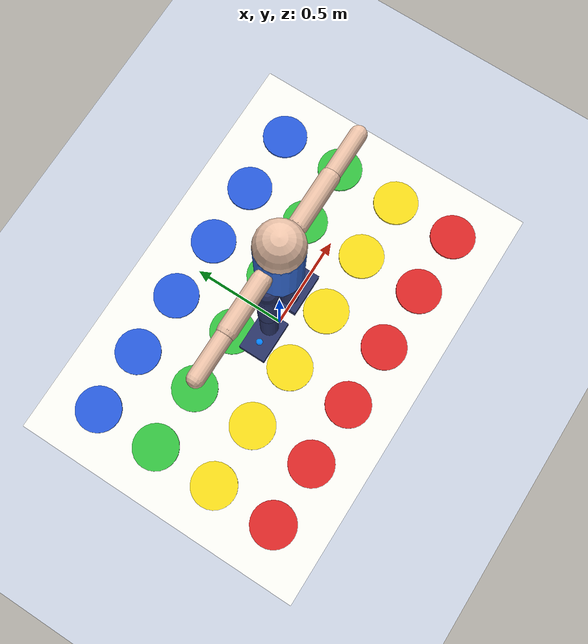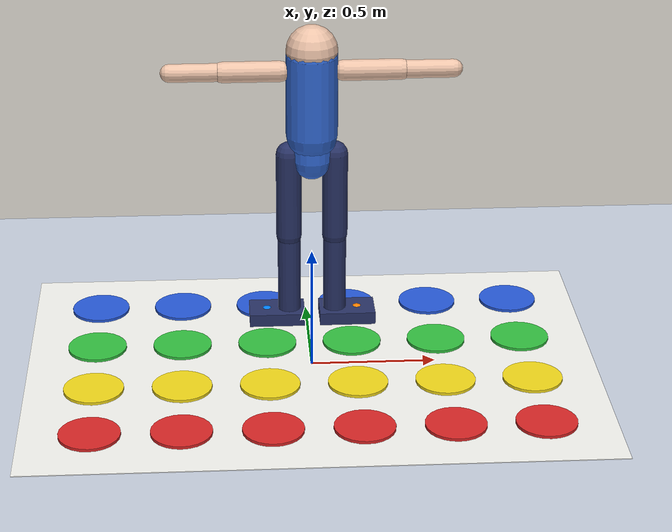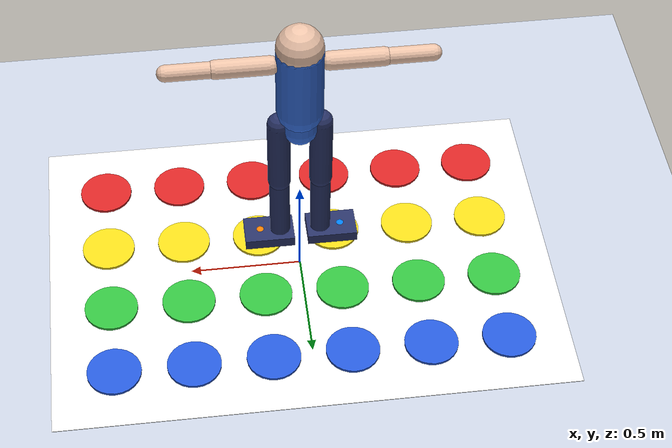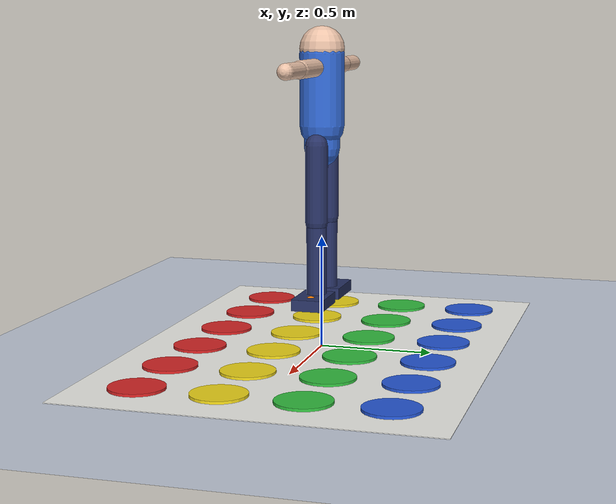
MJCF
<mujoco model="twister_humanoid">
  <compiler angle="degree" coordinate="local" inertiafromgeom="false"/>
  <option gravity="0 0 -9.81" timestep="0.01" integrator="RK4"/>

  <visual>
    <global offwidth="1280" offheight="960" elevation="-20" azimuth="135"/>
    <quality shadowsize="4096" offsamples="8"/>
    <headlight ambient="0.35 0.35 0.4" diffuse="0.5 0.5 0.5" specular="0.2 0.2 0.2"/>
    <map shadowclip="2.5" znear="0.02" zfar="40"/>
    <rgba haze="0.85 0.89 0.95 1"/>
  </visual>

  <default>
    <joint limited="true" damping="4" armature="0.04"/>
    <geom friction="1.2 0.05 0.005" condim="3" margin="0.002" solref="0.02 1" solimp="0.9 0.95 0.001"/>
    <position kp="90" kv="12" forcerange="-250 250"/>
  </default>

  <asset>
    <texture name="skybox" type="skybox" builtin="gradient" rgb1="0.32 0.45 0.62" rgb2="0.08 0.10 0.18" width="512" height="512"/>
    <texture name="grid" type="2d" builtin="checker" width="512" height="512" rgb1="0.86 0.88 0.92" rgb2="0.70 0.74 0.82" mark="edge" markrgb="0.55 0.58 0.66"/>
    <material name="grid" texture="grid" texrepeat="12 12" reflectance="0.18" shininess="0.3" specular="0.4"/>
    <material name="skin" rgba="0.92 0.76 0.66 1" specular="0.3" shininess="0.4" reflectance="0.05"/>
    <material name="shirt" rgba="0.20 0.42 0.85 1" specular="0.5" shininess="0.5" reflectance="0.12"/>
    <material name="pants" rgba="0.16 0.20 0.40 1" specular="0.4" shininess="0.4" reflectance="0.1"/>
  </asset>

  <worldbody>
    <light name="key" pos="2.5 -1.5 4.5" dir="-0.45 0.3 -1" directional="false" diffuse="0.7 0.7 0.68" specular="0.3 0.3 0.3" castshadow="true"/>
    <light name="fill" pos="-2.5 2.0 3.0" dir="0.5 -0.4 -1" directional="false" diffuse="0.3 0.32 0.4" castshadow="false"/>
    <geom name="floor" type="plane" size="6 6 0.1" material="grid"/>

    <!-- Twister mat (visual only, no collision) -->
    <geom name="twister_mat" type="box" size="1.15 0.8 0.012" pos="0 0 -0.012" rgba="0.96 0.96 0.94 1" contype="0" conaffinity="0"/>
    <geom name="mat_r0_c0" type="cylinder" size="0.12 0.006" pos="-0.875 -0.525 0.006" rgba="0.85 0.15 0.15 1" contype="0" conaffinity="0"/>
    <geom name="mat_r0_c1" type="cylinder" size="0.12 0.006" pos="-0.525 -0.525 0.006" rgba="0.85 0.15 0.15 1" contype="0" conaffinity="0"/>
    <geom name="mat_r0_c2" type="cylinder" size="0.12 0.006" pos="-0.175 -0.525 0.006" rgba="0.85 0.15 0.15 1" contype="0" conaffinity="0"/>
    <geom name="mat_r0_c3" type="cylinder" size="0.12 0.006" pos="0.175 -0.525 0.006" rgba="0.85 0.15 0.15 1" contype="0" conaffinity="0"/>
    <geom name="mat_r0_c4" type="cylinder" size="0.12 0.006" pos="0.525 -0.525 0.006" rgba="0.85 0.15 0.15 1" contype="0" conaffinity="0"/>
    <geom name="mat_r0_c5" type="cylinder" size="0.12 0.006" pos="0.875 -0.525 0.006" rgba="0.85 0.15 0.15 1" contype="0" conaffinity="0"/>
    <geom name="mat_r1_c0" type="cylinder" size="0.12 0.006" pos="-0.875 -0.175 0.006" rgba="0.95 0.85 0.1 1" contype="0" conaffinity="0"/>
    <geom name="mat_r1_c1" type="cylinder" size="0.12 0.006" pos="-0.525 -0.175 0.006" rgba="0.95 0.85 0.1 1" contype="0" conaffinity="0"/>
    <geom name="mat_r1_c2" type="cylinder" size="0.12 0.006" pos="-0.175 -0.175 0.006" rgba="0.95 0.85 0.1 1" contype="0" conaffinity="0"/>
    <geom name="mat_r1_c3" type="cylinder" size="0.12 0.006" pos="0.175 -0.175 0.006" rgba="0.95 0.85 0.1 1" contype="0" conaffinity="0"/>
    <geom name="mat_r1_c4" type="cylinder" size="0.12 0.006" pos="0.525 -0.175 0.006" rgba="0.95 0.85 0.1 1" contype="0" conaffinity="0"/>
    <geom name="mat_r1_c5" type="cylinder" size="0.12 0.006" pos="0.875 -0.175 0.006" rgba="0.95 0.85 0.1 1" contype="0" conaffinity="0"/>
    <geom name="mat_r2_c0" type="cylinder" size="0.12 0.006" pos="-0.875 0.175 0.006" rgba="0.2 0.75 0.25 1" contype="0" conaffinity="0"/>
    <geom name="mat_r2_c1" type="cylinder" size="0.12 0.006" pos="-0.525 0.175 0.006" rgba="0.2 0.75 0.25 1" contype="0" conaffinity="0"/>
    <geom name="mat_r2_c2" type="cylinder" size="0.12 0.006" pos="-0.175 0.175 0.006" rgba="0.2 0.75 0.25 1" contype="0" conaffinity="0"/>
    <geom name="mat_r2_c3" type="cylinder" size="0.12 0.006" pos="0.175 0.175 0.006" rgba="0.2 0.75 0.25 1" contype="0" conaffinity="0"/>
    <geom name="mat_r2_c4" type="cylinder" size="0.12 0.006" pos="0.525 0.175 0.006" rgba="0.2 0.75 0.25 1" contype="0" conaffinity="0"/>
    <geom name="mat_r2_c5" type="cylinder" size="0.12 0.006" pos="0.875 0.175 0.006" rgba="0.2 0.75 0.25 1" contype="0" conaffinity="0"/>
    <geom name="mat_r3_c0" type="cylinder" size="0.12 0.006" pos="-0.875 0.525 0.006" rgba="0.15 0.35 0.85 1" contype="0" conaffinity="0"/>
    <geom name="mat_r3_c1" type="cylinder" size="0.12 0.006" pos="-0.525 0.525 0.006" rgba="0.15 0.35 0.85 1" contype="0" conaffinity="0"/>
    <geom name="mat_r3_c2" type="cylinder" size="0.12 0.006" pos="-0.175 0.525 0.006" rgba="0.15 0.35 0.85 1" contype="0" conaffinity="0"/>
    <geom name="mat_r3_c3" type="cylinder" size="0.12 0.006" pos="0.175 0.525 0.006" rgba="0.15 0.35 0.85 1" contype="0" conaffinity="0"/>
    <geom name="mat_r3_c4" type="cylinder" size="0.12 0.006" pos="0.525 0.525 0.006" rgba="0.15 0.35 0.85 1" contype="0" conaffinity="0"/>
    <geom name="mat_r3_c5" type="cylinder" size="0.12 0.006" pos="0.875 0.525 0.006" rgba="0.15 0.35 0.85 1" contype="0" conaffinity="0"/>

    <camera name="showcase" pos="2.3 1.95 1.15" xyaxes="-0.6467 0.7628 0 -0.1725 -0.1462 0.9742" fovy="44"/>

    <body name="pelvis" pos="0 0 0.92">
      <freejoint name="root"/>
      <inertial mass="14" pos="0 0 -0.03" diaginertia="0.12 0.10 0.08"/>
      <geom name="pelvis_geom" type="capsule" size="0.08" fromto="0 0 -0.02 0 0 0.06" material="shirt"/>

      <body name="torso" pos="0 0 0.08">
        <joint name="abdomen_pitch" type="hinge" axis="1 0 0" range="-25 25" damping="6"/>
        <inertial mass="12" pos="0 0 0.12" diaginertia="0.30 0.26 0.16"/>
        <geom name="torso_geom" type="capsule" size="0.10" fromto="0 0 0 0 0 0.32" material="shirt"/>
        <site name="torso_top" pos="0 0 0.32" size="0.02"/>

        <body name="head" pos="0 0 0.34">
          <inertial mass="4" pos="0 0 0" diaginertia="0.04 0.04 0.03"/>
          <geom name="head_geom" type="sphere" size="0.10" material="skin"/>
        </body>

        <!-- Left arm -->
        <body name="left_upper_arm" pos="0.12 0 0.26">
          <joint name="left_shoulder_pitch" type="hinge" axis="0 1 0" range="-140 140"/>
          <joint name="left_shoulder_roll" type="hinge" axis="1 0 0" range="-110 30"/>
          <inertial mass="2.0" pos="0.11 0 0" diaginertia="0.02 0.02 0.01"/>
          <geom type="capsule" size="0.04" fromto="0 0 0 0.22 0 0" material="skin"/>
          <body name="left_forearm" pos="0.22 0 0">
            <joint name="left_elbow" type="hinge" axis="0 1 0" range="-5 145"/>
            <inertial mass="1.2" pos="0.10 0 0" diaginertia="0.01 0.01 0.005"/>
            <geom type="capsule" size="0.035" fromto="0 0 0 0.20 0 0" material="skin"/>
            <site name="left_hand" pos="0.20 0 0" size="0.03" rgba="1 0 0 1"/>
          </body>
        </body>

        <!-- Right arm -->
        <body name="right_upper_arm" pos="-0.12 0 0.26">
          <joint name="right_shoulder_pitch" type="hinge" axis="0 1 0" range="-140 140"/>
          <joint name="right_shoulder_roll" type="hinge" axis="1 0 0" range="-30 110"/>
          <inertial mass="2.0" pos="-0.11 0 0" diaginertia="0.02 0.02 0.01"/>
          <geom type="capsule" size="0.04" fromto="0 0 0 -0.22 0 0" material="skin"/>
          <body name="right_forearm" pos="-0.22 0 0">
            <joint name="right_elbow" type="hinge" axis="0 1 0" range="-5 145"/>
            <inertial mass="1.2" pos="-0.10 0 0" diaginertia="0.01 0.01 0.005"/>
            <geom type="capsule" size="0.035" fromto="0 0 0 -0.20 0 0" material="skin"/>
            <site name="right_hand" pos="-0.20 0 0" size="0.03" rgba="0 0 1 1"/>
          </body>
        </body>
      </body>

      <!-- Left leg -->
      <body name="left_thigh" pos="0.09 0 0">
        <joint name="left_hip_pitch" type="hinge" axis="0 1 0" range="-110 35"/>
        <joint name="left_hip_roll" type="hinge" axis="1 0 0" range="-35 35"/>
        <inertial mass="6.0" pos="0 0 -0.16" diaginertia="0.08 0.08 0.03"/>
        <geom type="capsule" size="0.05" fromto="0 0 0 0 0 -0.34" material="pants"/>
        <body name="left_shin" pos="0 0 -0.34">
          <joint name="left_knee" type="hinge" axis="0 1 0" range="-5 135"/>
          <inertial mass="4.0" pos="0 0 -0.15" diaginertia="0.05 0.05 0.02"/>
          <geom type="capsule" size="0.045" fromto="0 0 0 0 0 -0.32" material="pants"/>
          <body name="left_foot_body" pos="0 0 -0.32">
            <joint name="left_ankle" type="hinge" axis="0 1 0" range="-35 35"/>
            <inertial mass="2.5" pos="0.05 0 -0.02" diaginertia="0.008 0.015 0.015"/>
            <geom name="left_foot_geom" type="box" size="0.11 0.07 0.025" pos="0.05 0 -0.025" material="pants"/>
            <site name="left_foot" pos="0.09 0 -0.025" size="0.03" rgba="1 0.5 0 1"/>
          </body>
        </body>
      </body>

      <!-- Right leg -->
      <body name="right_thigh" pos="-0.09 0 0">
        <joint name="right_hip_pitch" type="hinge" axis="0 1 0" range="-110 35"/>
        <joint name="right_hip_roll" type="hinge" axis="1 0 0" range="-35 35"/>
        <inertial mass="6.0" pos="0 0 -0.16" diaginertia="0.08 0.08 0.03"/>
        <geom type="capsule" size="0.05" fromto="0 0 0 0 0 -0.34" material="pants"/>
        <body name="right_shin" pos="0 0 -0.34">
          <joint name="right_knee" type="hinge" axis="0 1 0" range="-5 135"/>
          <inertial mass="4.0" pos="0 0 -0.15" diaginertia="0.05 0.05 0.02"/>
          <geom type="capsule" size="0.045" fromto="0 0 0 0 0 -0.32" material="pants"/>
          <body name="right_foot_body" pos="0 0 -0.32">
            <joint name="right_ankle" type="hinge" axis="0 1 0" range="-35 35"/>
            <inertial mass="2.5" pos="-0.05 0 -0.02" diaginertia="0.008 0.015 0.015"/>
            <geom name="right_foot_geom" type="box" size="0.11 0.07 0.025" pos="-0.05 0 -0.025" material="pants"/>
            <site name="right_foot" pos="-0.09 0 -0.025" size="0.03" rgba="0 0.5 1 1"/>
          </body>
        </body>
      </body>
    </body>
  </worldbody>

  <actuator>
    <position name="act_abdomen_pitch" joint="abdomen_pitch" kp="70" kv="10"/>
    <position name="act_left_shoulder_pitch" joint="left_shoulder_pitch" kp="45" kv="8" forcerange="-100 100"/>
    <position name="act_left_shoulder_roll" joint="left_shoulder_roll" kp="45" kv="8" forcerange="-100 100"/>
    <position name="act_left_elbow" joint="left_elbow" kp="50" kv="8" forcerange="-80 80"/>
    <position name="act_right_shoulder_pitch" joint="right_shoulder_pitch" kp="45" kv="8" forcerange="-100 100"/>
    <position name="act_right_shoulder_roll" joint="right_shoulder_roll" kp="45" kv="8" forcerange="-100 100"/>
    <position name="act_right_elbow" joint="right_elbow" kp="50" kv="8" forcerange="-80 80"/>
    <position name="act_left_hip_pitch" joint="left_hip_pitch" kp="110" kv="14"/>
    <position name="act_left_hip_roll" joint="left_hip_roll" kp="110" kv="14"/>
    <position name="act_left_knee" joint="left_knee" kp="110" kv="14"/>
    <position name="act_left_ankle" joint="left_ankle" kp="90" kv="12"/>
    <position name="act_right_hip_pitch" joint="right_hip_pitch" kp="110" kv="14"/>
    <position name="act_right_hip_roll" joint="right_hip_roll" kp="110" kv="14"/>
    <position name="act_right_knee" joint="right_knee" kp="110" kv="14"/>
    <position name="act_right_ankle" joint="right_ankle" kp="90" kv="12"/>
  </actuator>
</mujoco>
